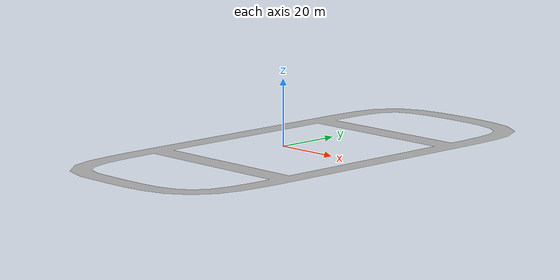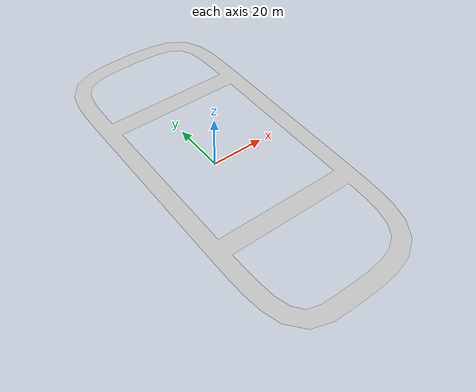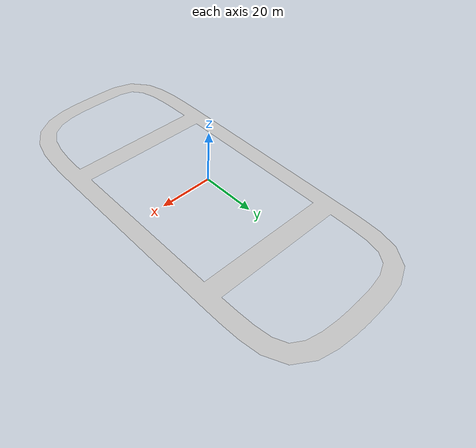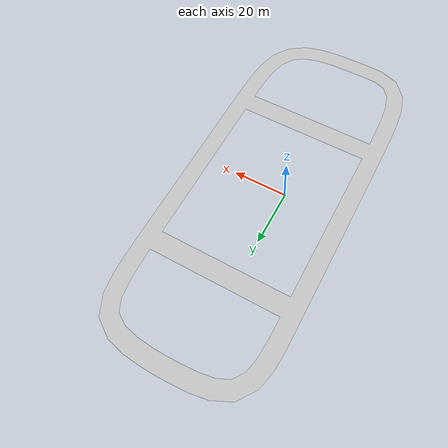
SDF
<?xml version="1.0" ?>
<sdf version="1.5">
  <model name="a_custom_track">
    <static>true</static>
    <link name="link">
      <visual name="visual">
        <geometry>
          <mesh>
            <uri>/home/luqman/test_blender_models/track/materials/meshes/complete_circuit.dae</uri>
          </mesh>
        </geometry>
        <material>
          <script>
            <uri>/home/luqman/test_blender_models/track/materials/scripts</uri>
            <uri>/home/luqman/test_blender_models/track/materials/textures</uri>
            <name>road/Diffuse</name>
          </script>
        </material>
      </visual>
      <collision name="collision">
        <geometry>
          <mesh>
            <uri>/home/luqman/test_blender_models/track/materials/meshes/complete_circuit.dae</uri>
          </mesh>
        </geometry>
      </collision>
    </link>
  </model>
</sdf>
